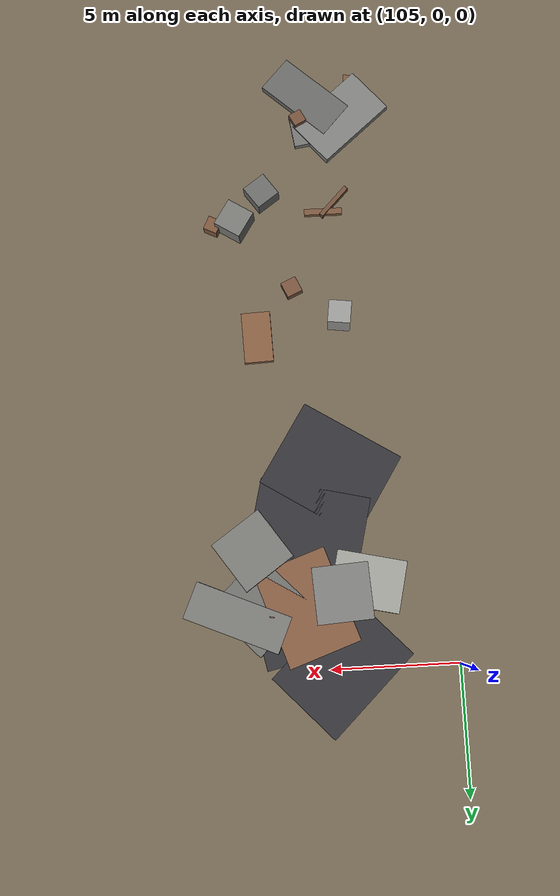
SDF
<sdf version="1.6">
 <world name="navitas_arena">
  <model name="ground_plane">
   <static>true</static>
   <link name="link">
    <collision name="collision">
     <geometry><plane><normal>0 0 1</normal><size>400 400</size></plane></geometry>
     <surface><friction><ode><mu>0.550</mu><mu2>0.550</mu2></ode></friction></surface>
    </collision>
    <visual name="visual">
     <cast_shadows>false</cast_shadows>
     <geometry><plane><normal>0 0 1</normal><size>400 400</size></plane></geometry>
     <material><ambient>0.450 0.400 0.320 1</ambient><diffuse>0.450 0.400 0.320 1</diffuse></material>
    </visual>
   </link>
  </model>
  <model name="road_zor_3_7">
   <static>true</static>
   <pose>109.572 -7.746 0.040 0 0 1.006</pose>
   <link name="link">
    <collision name="col"><geometry><box><size>3.614 4.400 0.020</size></box></geometry></collision>
    <visual name="vis">
     <geometry><box><size>3.614 4.400 0.020</size></box></geometry>
     <material><ambient>0.20 0.20 0.22 1</ambient><diffuse>0.20 0.20 0.22 1</diffuse></material>
    </visual>
   </link>
  </model>
  <model name="road_zor_3_8">
   <static>true</static>
   <pose>110.636 -5.200 0.040 0 0 1.334</pose>
   <link name="link">
    <collision name="col"><geometry><box><size>3.781 4.400 0.020</size></box></geometry></collision>
    <visual name="vis">
     <geometry><box><size>3.781 4.400 0.020</size></box></geometry>
     <material><ambient>0.20 0.20 0.22 1</ambient><diffuse>0.20 0.20 0.22 1</diffuse></material>
    </visual>
   </link>
  </model>
  <model name="road_zor_3_9">
   <static>true</static>
   <pose>110.661 -2.400 0.040 0 0 1.791</pose>
   <link name="link">
    <collision name="col"><geometry><box><size>3.770 4.400 0.020</size></box></geometry></collision>
    <visual name="vis">
     <geometry><box><size>3.770 4.400 0.020</size></box></geometry>
     <material><ambient>0.20 0.20 0.22 1</ambient><diffuse>0.20 0.20 0.22 1</diffuse></material>
    </visual>
   </link>
  </model>
  <model name="road_zor_3_10">
   <static>true</static>
   <pose>109.508 -0.125 0.040 0 0 2.335</pose>
   <link name="link">
    <collision name="col"><geometry><box><size>3.323 4.400 0.020</size></box></geometry></collision>
    <visual name="vis">
     <geometry><box><size>3.323 4.400 0.020</size></box></geometry>
     <material><ambient>0.20 0.20 0.22 1</ambient><diffuse>0.20 0.20 0.22 1</diffuse></material>
    </visual>
   </link>
  </model>
  <model name="blk_zor_3_0_0">
   <static>true</static>
   <pose>112.556 -2.568 0.400 0 0 2.340</pose>
   <link name="link">
    <collision name="col"><geometry><box><size>2.711 2.750 0.800</size></box></geometry></collision>
    <visual name="vis">
     <geometry><box><size>2.711 2.750 0.800</size></box></geometry>
     <material><ambient>0.43 0.43 0.42 1</ambient><diffuse>0.43 0.43 0.42 1</diffuse></material>
    </visual>
   </link>
  </model>
  <model name="blk_zor_3_0_1">
   <static>true</static>
   <pose>109.377 -2.874 0.505 0 0 1.632</pose>
   <link name="link">
    <collision name="col"><geometry><box><size>2.171 2.171 1.011</size></box></geometry></collision>
    <visual name="vis">
     <geometry><box><size>2.171 2.171 1.011</size></box></geometry>
     <material><ambient>0.49 0.49 0.48 1</ambient><diffuse>0.49 0.49 0.48 1</diffuse></material>
    </visual>
   </link>
  </model>
  <model name="blk_zor_3_0_2">
   <static>true</static>
   <pose>110.759 -2.406 0.400 0 0 1.904</pose>
   <link name="link">
    <collision name="col"><geometry><box><size>3.799 2.890 0.800</size></box></geometry></collision>
    <visual name="vis">
     <geometry><box><size>3.799 2.890 0.800</size></box></geometry>
     <material><ambient>0.52 0.36 0.26 1</ambient><diffuse>0.52 0.36 0.26 1</diffuse></material>
    </visual>
   </link>
  </model>
  <model name="blk_zor_3_0_3">
   <static>true</static>
   <pose>112.236 -5.229 0.400 0 0 2.099</pose>
   <link name="link">
    <collision name="col"><geometry><box><size>0.778 0.778 0.800</size></box></geometry></collision>
    <visual name="vis">
     <geometry><box><size>0.778 0.778 0.800</size></box></geometry>
     <material><ambient>0.58 0.58 0.57 1</ambient><diffuse>0.58 0.58 0.57 1</diffuse></material>
    </visual>
   </link>
  </model>
  <model name="blk_zor_3_0_4">
   <static>true</static>
   <pose>112.733 -4.656 0.534 0 0 2.180</pose>
   <link name="link">
    <collision name="col"><geometry><box><size>2.236 2.236 1.068</size></box></geometry></collision>
    <visual name="vis">
     <geometry><box><size>2.236 2.236 1.068</size></box></geometry>
     <material><ambient>0.47 0.47 0.46 1</ambient><diffuse>0.47 0.47 0.46 1</diffuse></material>
    </visual>
   </link>
  </model>
  <model name="blk_zor_3_0_5">
   <static>true</static>
   <pose>113.420 -2.170 0.400 0 0 2.735</pose>
   <link name="link">
    <collision name="col"><geometry><box><size>3.887 1.470 0.800</size></box></geometry></collision>
    <visual name="vis">
     <geometry><box><size>3.887 1.470 0.800</size></box></geometry>
     <material><ambient>0.47 0.47 0.46 1</ambient><diffuse>0.47 0.47 0.46 1</diffuse></material>
    </visual>
   </link>
  </model>
  <model name="blk_zor_3_0_6">
   <static>true</static>
   <pose>108.375 -3.266 0.400 0 0 2.917</pose>
   <link name="link">
    <collision name="col"><geometry><box><size>2.716 2.020 0.800</size></box></geometry></collision>
    <visual name="vis">
     <geometry><box><size>2.716 2.020 0.800</size></box></geometry>
     <material><ambient>0.62 0.62 0.60 1</ambient><diffuse>0.62 0.62 0.60 1</diffuse></material>
    </visual>
   </link>
  </model>
  <model name="deb_zor_1">
   <static>true</static>
   <pose>109.297 -18.479 0.104 0 0 3.135</pose>
   <link name="link">
    <collision name="col"><geometry><box><size>1.548 0.256 0.209</size></box></geometry></collision>
    <visual name="vis">
     <geometry><box><size>1.548 0.256 0.209</size></box></geometry>
     <material><ambient>0.48 0.34 0.24 1</ambient><diffuse>0.48 0.34 0.24 1</diffuse></material>
    </visual>
   </link>
  </model>
  <model name="deb_zor_5">
   <static>true</static>
   <pose>113.839 -18.031 0.256 0 0 1.111</pose>
   <link name="link">
    <collision name="col"><geometry><box><size>0.575 0.575 0.512</size></box></geometry></collision>
    <visual name="vis">
     <geometry><box><size>0.575 0.575 0.512</size></box></geometry>
     <material><ambient>0.49 0.34 0.24 1</ambient><diffuse>0.49 0.34 0.24 1</diffuse></material>
    </visual>
   </link>
  </model>
  <model name="deb_zor_7">
   <static>true</static>
   <pose>108.360 -22.606 0.154 0 0 0.707</pose>
   <link name="link">
    <collision name="col"><geometry><box><size>3.489 2.087 0.308</size></box></geometry></collision>
    <visual name="vis">
     <geometry><box><size>3.489 2.087 0.308</size></box></geometry>
     <material><ambient>0.50 0.50 0.49 1</ambient><diffuse>0.50 0.50 0.49 1</diffuse></material>
    </visual>
   </link>
  </model>
  <model name="deb_zor_18">
   <static>true</static>
   <pose>110.143 -22.545 0.258 0 0 0.477</pose>
   <link name="link">
    <collision name="col"><geometry><box><size>0.540 0.540 0.516</size></box></geometry></collision>
    <visual name="vis">
     <geometry><box><size>0.540 0.540 0.516</size></box></geometry>
     <material><ambient>0.46 0.32 0.23 1</ambient><diffuse>0.46 0.32 0.23 1</diffuse></material>
    </visual>
   </link>
  </model>
  <model name="deb_zor_34">
   <static>true</static>
   <pose>108.035 -23.559 0.077 0 0 1.490</pose>
   <link name="link">
    <collision name="col"><geometry><box><size>1.986 0.300 0.154</size></box></geometry></collision>
    <visual name="vis">
     <geometry><box><size>1.986 0.300 0.154</size></box></geometry>
     <material><ambient>0.49 0.35 0.25 1</ambient><diffuse>0.49 0.35 0.25 1</diffuse></material>
    </visual>
   </link>
  </model>
  <model name="deb_zor_60">
   <static>true</static>
   <pose>109.773 -23.565 0.157 0 0 2.408</pose>
   <link name="link">
    <collision name="col"><geometry><box><size>3.342 1.625 0.313</size></box></geometry></collision>
    <visual name="vis">
     <geometry><box><size>3.342 1.625 0.313</size></box></geometry>
     <material><ambient>0.41 0.41 0.40 1</ambient><diffuse>0.41 0.41 0.40 1</diffuse></material>
    </visual>
   </link>
  </model>
  <model name="deb_zor_63">
   <static>true</static>
   <pose>109.179 -22.195 0.128 0 0 0.144</pose>
   <link name="link">
    <collision name="col"><geometry><box><size>2.472 1.283 0.256</size></box></geometry></collision>
    <visual name="vis">
     <geometry><box><size>2.472 1.283 0.256</size></box></geometry>
     <material><ambient>0.45 0.45 0.44 1</ambient><diffuse>0.45 0.45 0.44 1</diffuse></material>
    </visual>
   </link>
  </model>
  <model name="deb_zor_77">
   <static>true</static>
   <pose>111.794 -19.311 0.359 0 0 0.620</pose>
   <link name="link">
    <collision name="col"><geometry><box><size>1.031 1.031 0.719</size></box></geometry></collision>
    <visual name="vis">
     <geometry><box><size>1.031 1.031 0.719</size></box></geometry>
     <material><ambient>0.42 0.42 0.41 1</ambient><diffuse>0.42 0.42 0.41 1</diffuse></material>
    </visual>
   </link>
  </model>
  <model name="deb_zor_105">
   <static>true</static>
   <pose>108.875 -13.878 0.610 0 0 1.443</pose>
   <link name="link">
    <collision name="col"><geometry><box><size>0.904 0.904 1.221</size></box></geometry></collision>
    <visual name="vis">
     <geometry><box><size>0.904 0.904 1.221</size></box></geometry>
     <material><ambient>0.60 0.60 0.59 1</ambient><diffuse>0.60 0.60 0.59 1</diffuse></material>
    </visual>
   </link>
  </model>
  <model name="deb_zor_122">
   <static>true</static>
   <pose>112.229 -13.256 0.127 0 0 1.608</pose>
   <link name="link">
    <collision name="col"><geometry><box><size>2.063 1.163 0.255</size></box></geometry></collision>
    <visual name="vis">
     <geometry><box><size>2.063 1.163 0.255</size></box></geometry>
     <material><ambient>0.53 0.37 0.26 1</ambient><diffuse>0.53 0.37 0.26 1</diffuse></material>
    </visual>
   </link>
  </model>
  <model name="deb_zor_132">
   <static>true</static>
   <pose>112.941 -18.136 0.436 0 0 1.005</pose>
   <link name="link">
    <collision name="col"><geometry><box><size>1.163 1.163 0.871</size></box></geometry></collision>
    <visual name="vis">
     <geometry><box><size>1.163 1.163 0.871</size></box></geometry>
     <material><ambient>0.47 0.47 0.46 1</ambient><diffuse>0.47 0.47 0.46 1</diffuse></material>
    </visual>
   </link>
  </model>
  <model name="deb_zor_148">
   <static>true</static>
   <pose>108.831 -18.874 0.151 0 0 0.813</pose>
   <link name="link">
    <collision name="col"><geometry><box><size>1.585 0.180 0.301</size></box></geometry></collision>
    <visual name="vis">
     <geometry><box><size>1.585 0.180 0.301</size></box></geometry>
     <material><ambient>0.45 0.32 0.23 1</ambient><diffuse>0.45 0.32 0.23 1</diffuse></material>
    </visual>
   </link>
  </model>
  <model name="deb_zor_159">
   <static>true</static>
   <pose>110.746 -15.252 0.185 0 0 0.428</pose>
   <link name="link">
    <collision name="col"><geometry><box><size>0.655 0.655 0.369</size></box></geometry></collision>
    <visual name="vis">
     <geometry><box><size>0.655 0.655 0.369</size></box></geometry>
     <material><ambient>0.47 0.33 0.24 1</ambient><diffuse>0.47 0.33 0.24 1</diffuse></material>
    </visual>
   </link>
  </model>
 </world>
</sdf>
